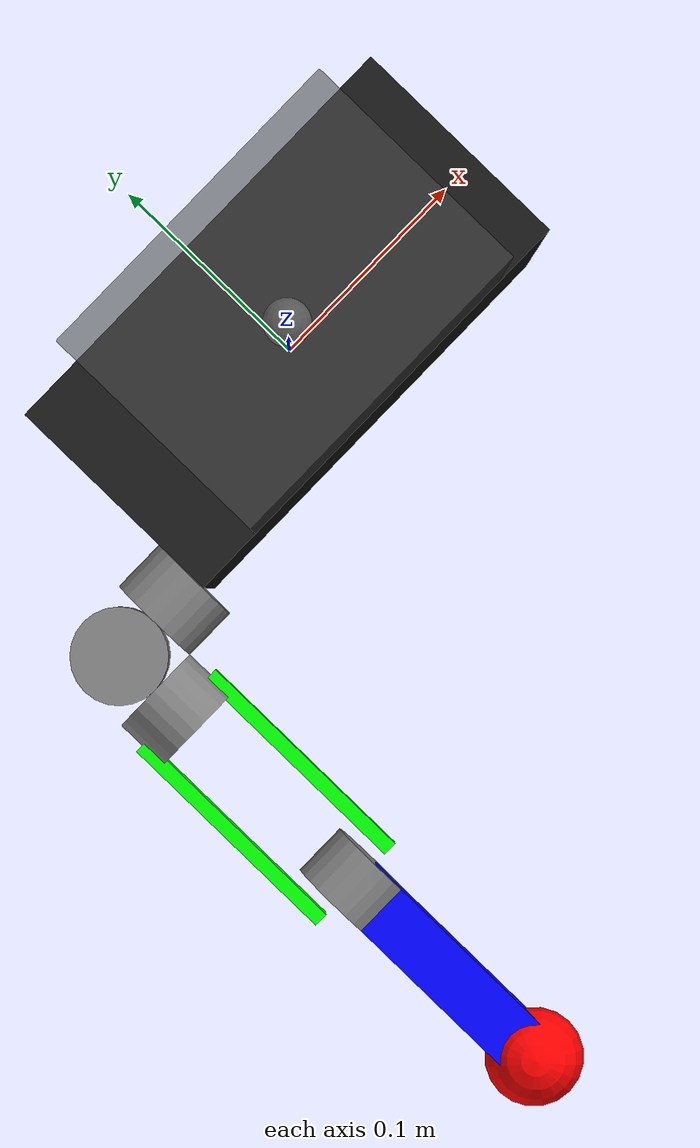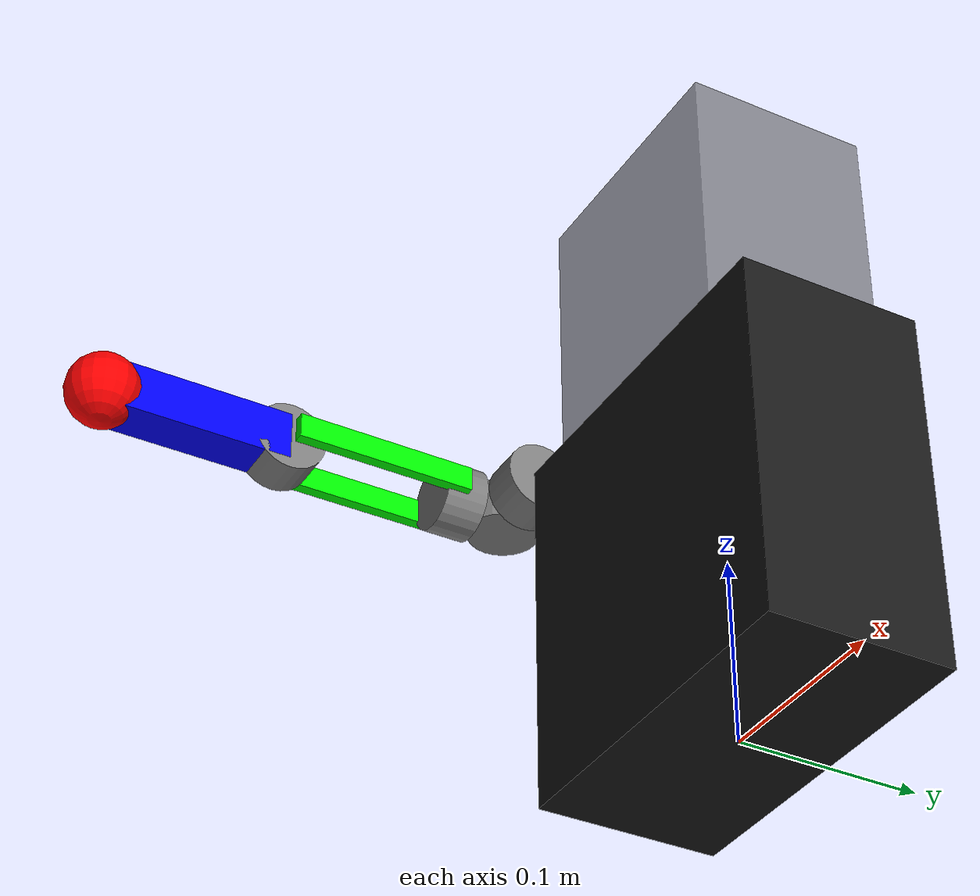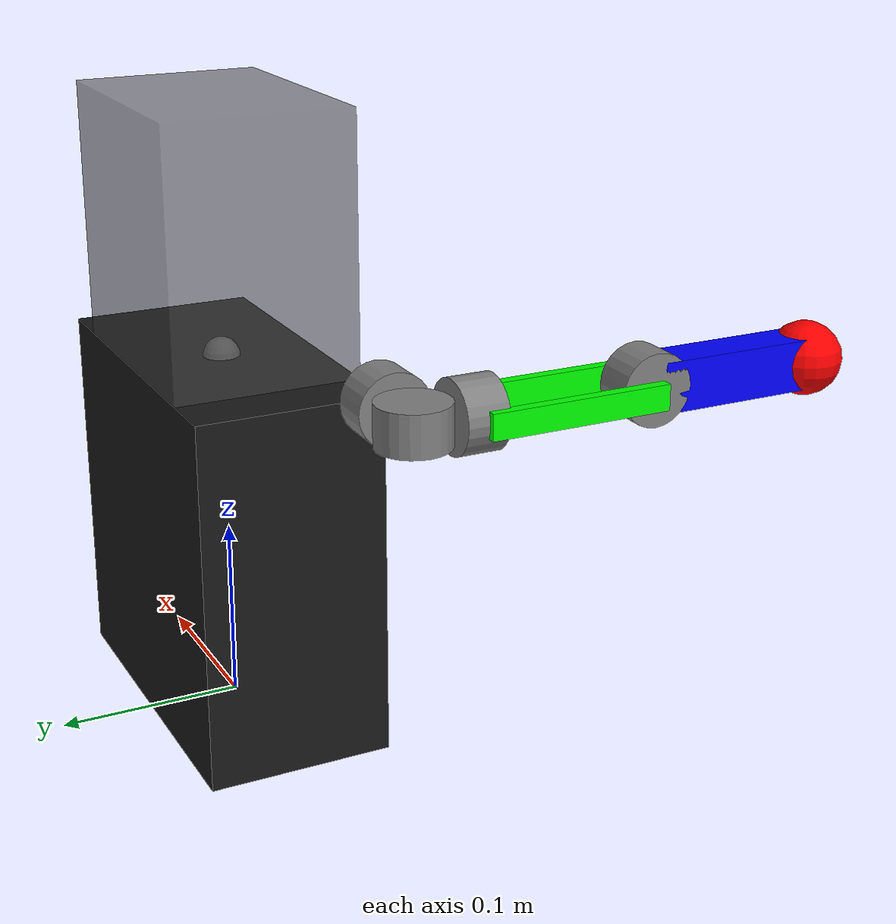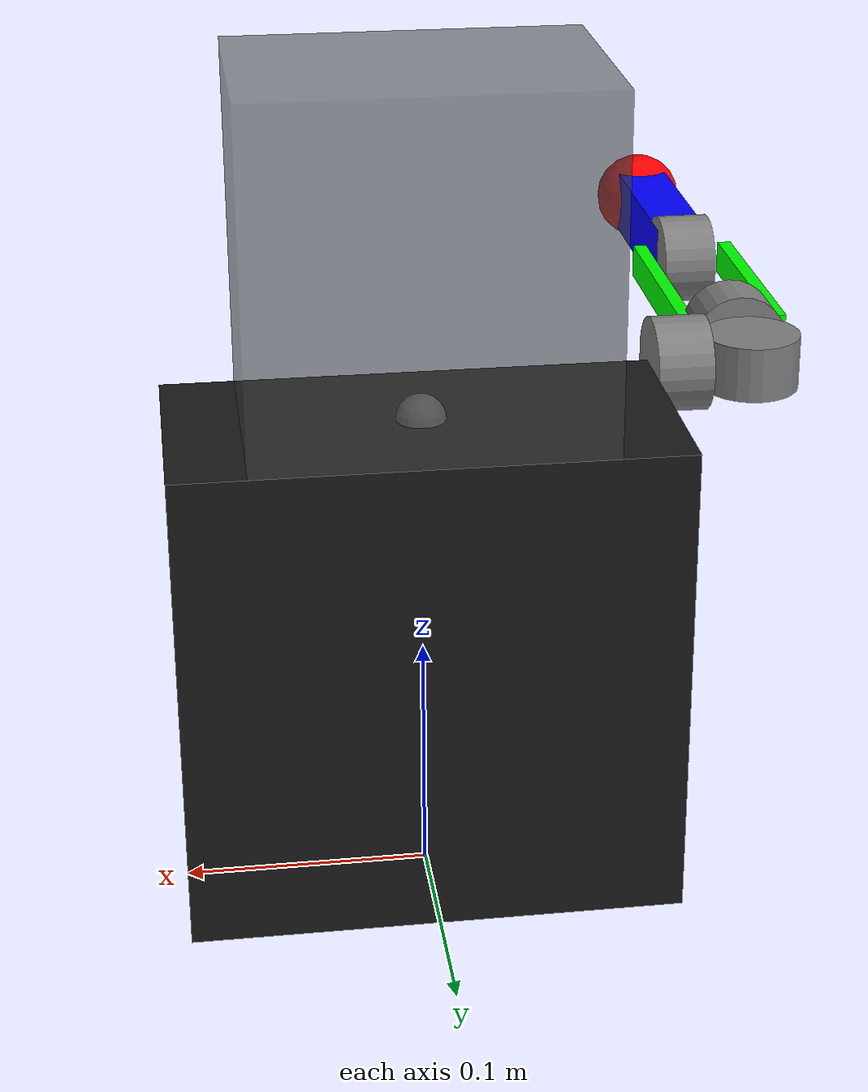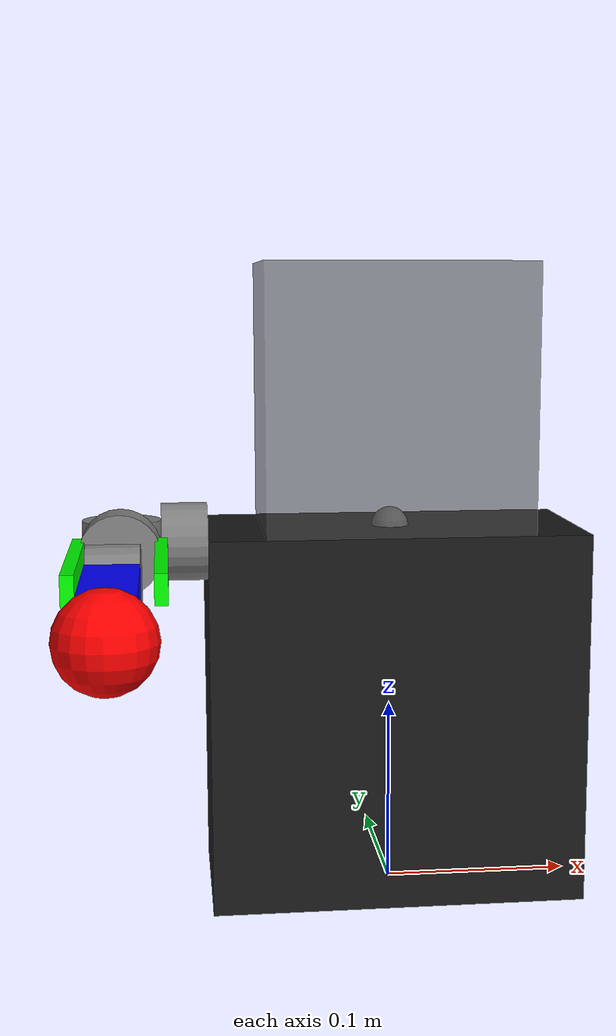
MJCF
<mujoco model="task1">
    <visual>
        <headlight ambient="0.5 0.5 0.5"/>
    </visual>
    <actuator>
        <motor gear="10000" joint="hinge_1" name="pitch_motor" ctrlrange="-0.00002 0.00002" ctrllimited="true"/>
        <motor gear="10000" joint="hinge_2" name="roll_motor" ctrlrange="-0.00002 0.00002" ctrllimited="true"/>
        <motor gear="10000" joint="hinge_3" name="yaw_motor" ctrlrange="-0.0000005 0.0000005" ctrllimited="true"/>
        <motor gear="10000" joint="hinge_4" name="elbow_motor" ctrlrange="-0.00001 0.00001" ctrllimited="true"/>
    </actuator>
    <option gravity="0 0 -9.81"/>

    <worldbody>
        <light name="top" pos="0 0 1"/>

        <!--geom type="plane" pos="-0.5 -0.5 0" size="1 1 0.1" rgba="1 0 1 1"/-->

        <body name="main_body" euler="0 0 0">
            <geom name="lower_part" type="box" pos="0 0 0.1" size="0.1 0.05 0.1" rgba="0.1 0.1 0.1 1"/>
            <geom name="shar" type="sphere" pos="0 0 0.2" size="0.01" rgba="0.5 0.5 0.5 1"/>
            <geom name="upper_part" type="box" pos="0 0 0.27" size="0.07 0.05 0.07" rgba="0.3 0.3 0.3 0.6"/>
        </body>

        <body name="motor1" euler="0 0 0">

            <geom type="cylinder" fromto="-0.1 -0.045 0.2 -0.123 -0.045 0.2"  size="0.0198" mass="0.065"/> <!-- fromto - defines uniquely main axis of the cylinder -->
            <joint name="hinge_1" type="hinge" pos="-0.1115 -0.045 0.2" axis="1 0 0"/>

            <body name="motor2" euler="0 0 0">

                <geom type="cylinder" fromto="-0.1428 -0.045 0.1885 -0.1428 -0.045 0.2115" size="0.0198" mass="0.065"/>
                <joint name="hinge_2" type="hinge" pos="-0.1428 -0.045 0.2" axis="0 0 1"/>

                <body name="motor3" euler="0 0 0">

                    <geom type="cylinder" fromto="-0.1428 -0.0648 0.2 -0.1428 -0.0878 0.2" size="0.0198" mass="0.065"/>
                    <joint name="hinge_3" type="hinge" pos="-0.1428 -0.0763 0.2" axis="0 1 0"/>
                    <geom name="link1_1" type="box" pos="-0.1626 -0.1263 0.2" size="0.003 0.05 0.007" mass="0.01" rgba="0 1 0 1"/>
                    <geom name="link1_2" type="box" pos="-0.123 -0.1263 0.2" size="0.003 0.05 0.007" mass="0.01" rgba="0 1 0 1"/>

                    <body name="motor4" euler="0 0 0">

                        <geom type="cylinder" fromto="-0.1543 -0.1763 0.2 -0.1313 -0.1763 0.2" size="0.0198" mass="0.065"/>
                        <joint name="hinge_4" type="hinge" pos="-0.1428 -0.1763 0.2" axis="1 0 0"/>

                        <geom name="link_2" type="box" pos="-0.1428 -0.2263 0.2" size="0.0115 0.05 0.0138" mass="0.02" rgba="0 0 1 1"/>
                        <geom name="end-mass" type="sphere" pos="-0.1428 -0.2763 0.2" size="0.02" mass="0.08" rgba="1 0 0 1"/>
                    </body>
                </body>
            </body>
        </body>
    </worldbody>

</mujoco>
